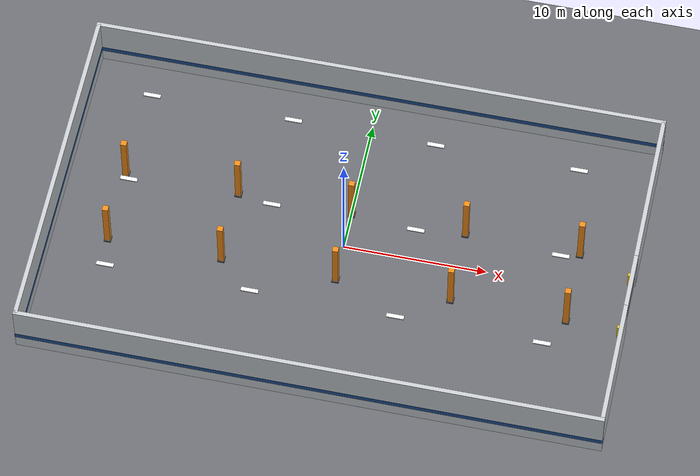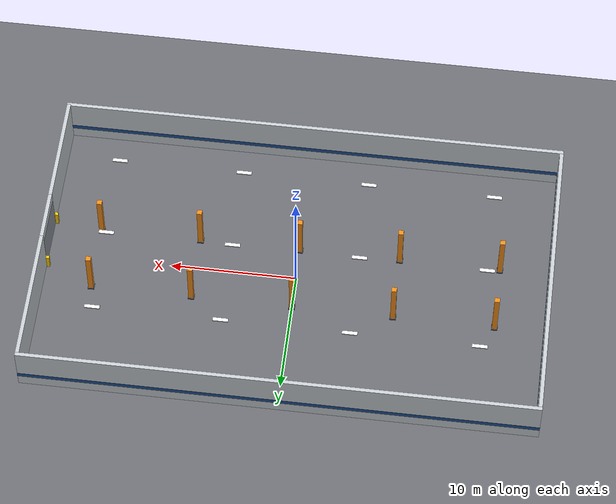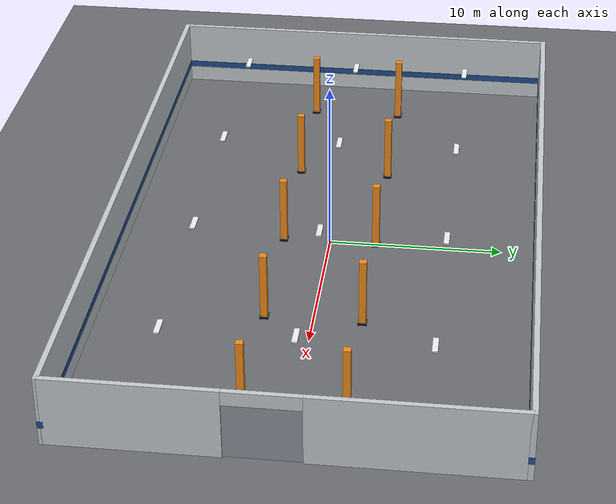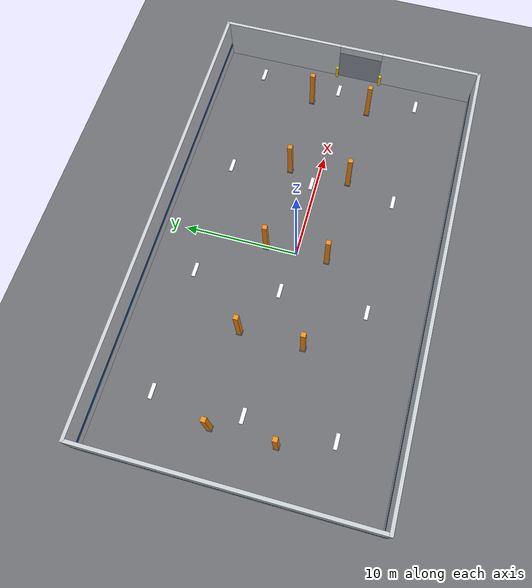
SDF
<sdf version="1.8">
 <world name="factory">
  <model name="ground">
   <static>true</static>
   <link name="l">
    <collision name="c">
     <geometry><plane><normal>0 0 1</normal><size>60 40</size></plane></geometry>
     <surface><friction><ode><mu>1.0</mu><mu2>1.0</mu2></ode></friction></surface>
    </collision>
    <visual name="v">
     <geometry><plane><normal>0 0 1</normal><size>60 40</size></plane></geometry>
     <material>
      <ambient>0.42 0.43 0.45 1</ambient>
      <diffuse>0.42 0.43 0.45 1</diffuse>
      <specular>0.3 0.3 0.3 1</specular>
      <pbr><metal><metalness>0.0</metalness><roughness>0.85</roughness></metal></pbr>
     </material>
    </visual>
   </link>
  </model>
  <model name="hall">
   <static>true</static>
   <link name="l0">
    <pose>0.000 12.000 2.000 0 0 0.000</pose>
    <collision name="c"><geometry><box><size>40.3 0.3 4.0</size></box></geometry></collision>
    <visual name="v">
     <geometry><box><size>40.3 0.3 4.0</size></box></geometry>
     <material>
      <ambient>0.78 0.8 0.82 1</ambient>
      <diffuse>0.78 0.8 0.82 1</diffuse>
      <specular>0.3 0.3 0.3 1</specular>
      <pbr><metal><metalness>0.0</metalness><roughness>0.7</roughness></metal></pbr>
     </material>
    </visual>
   </link>
   <link name="l1">
    <pose>0.000 12.000 1.200 0 0 0.000</pose>
    <visual name="v">
     <geometry><box><size>40.32 0.32 0.4</size></box></geometry>
     <material>
      <ambient>0.12 0.3 0.55 1</ambient>
      <diffuse>0.12 0.3 0.55 1</diffuse>
      <specular>0.3 0.3 0.3 1</specular>
      <pbr><metal><metalness>0.0</metalness><roughness>0.6</roughness></metal></pbr>
     </material>
     <cast_shadows>false</cast_shadows>
    </visual>
   </link>
   <link name="l2">
    <pose>0.000 -12.000 2.000 0 0 0.000</pose>
    <collision name="c"><geometry><box><size>40.3 0.3 4.0</size></box></geometry></collision>
    <visual name="v">
     <geometry><box><size>40.3 0.3 4.0</size></box></geometry>
     <material>
      <ambient>0.78 0.8 0.82 1</ambient>
      <diffuse>0.78 0.8 0.82 1</diffuse>
      <specular>0.3 0.3 0.3 1</specular>
      <pbr><metal><metalness>0.0</metalness><roughness>0.7</roughness></metal></pbr>
     </material>
    </visual>
   </link>
   <link name="l3">
    <pose>0.000 -12.000 1.200 0 0 0.000</pose>
    <visual name="v">
     <geometry><box><size>40.32 0.32 0.4</size></box></geometry>
     <material>
      <ambient>0.12 0.3 0.55 1</ambient>
      <diffuse>0.12 0.3 0.55 1</diffuse>
      <specular>0.3 0.3 0.3 1</specular>
      <pbr><metal><metalness>0.0</metalness><roughness>0.6</roughness></metal></pbr>
     </material>
     <cast_shadows>false</cast_shadows>
    </visual>
   </link>
   <link name="l4">
    <pose>-20.000 0.000 2.000 0 0 0.000</pose>
    <collision name="c"><geometry><box><size>0.3 24.0 4.0</size></box></geometry></collision>
    <visual name="v">
     <geometry><box><size>0.3 24.0 4.0</size></box></geometry>
     <material>
      <ambient>0.78 0.8 0.82 1</ambient>
      <diffuse>0.78 0.8 0.82 1</diffuse>
      <specular>0.3 0.3 0.3 1</specular>
      <pbr><metal><metalness>0.0</metalness><roughness>0.7</roughness></metal></pbr>
     </material>
    </visual>
   </link>
   <link name="l5">
    <pose>-20.000 0.000 1.200 0 0 0.000</pose>
    <visual name="v">
     <geometry><box><size>0.32 24.02 0.4</size></box></geometry>
     <material>
      <ambient>0.12 0.3 0.55 1</ambient>
      <diffuse>0.12 0.3 0.55 1</diffuse>
      <specular>0.3 0.3 0.3 1</specular>
      <pbr><metal><metalness>0.0</metalness><roughness>0.6</roughness></metal></pbr>
     </material>
     <cast_shadows>false</cast_shadows>
    </visual>
   </link>
   <link name="l6">
    <pose>20.000 -7.500 2.000 0 0 0.000</pose>
    <collision name="c"><geometry><box><size>0.3 9.0 4.0</size></box></geometry></collision>
    <visual name="v">
     <geometry><box><size>0.3 9.0 4.0</size></box></geometry>
     <material>
      <ambient>0.78 0.8 0.82 1</ambient>
      <diffuse>0.78 0.8 0.82 1</diffuse>
      <specular>0.3 0.3 0.3 1</specular>
      <pbr><metal><metalness>0.0</metalness><roughness>0.7</roughness></metal></pbr>
     </material>
    </visual>
   </link>
   <link name="l7">
    <pose>20.000 6.500 2.000 0 0 0.000</pose>
    <collision name="c"><geometry><box><size>0.3 11.0 4.0</size></box></geometry></collision>
    <visual name="v">
     <geometry><box><size>0.3 11.0 4.0</size></box></geometry>
     <material>
      <ambient>0.78 0.8 0.82 1</ambient>
      <diffuse>0.78 0.8 0.82 1</diffuse>
      <specular>0.3 0.3 0.3 1</specular>
      <pbr><metal><metalness>0.0</metalness><roughness>0.7</roughness></metal></pbr>
     </material>
    </visual>
   </link>
   <link name="l8">
    <pose>19.950 -1.000 1.600 0 0 0.000</pose>
    <collision name="c"><geometry><box><size>0.2 4.0 3.2</size></box></geometry></collision>
    <visual name="v">
     <geometry><box><size>0.2 4.0 3.2</size></box></geometry>
     <material>
      <ambient>0.55 0.58 0.62 1</ambient>
      <diffuse>0.55 0.58 0.62 1</diffuse>
      <specular>0.3 0.3 0.3 1</specular>
      <pbr><metal><metalness>0.8</metalness><roughness>0.4</roughness></metal></pbr>
     </material>
    </visual>
   </link>
   <link name="l9">
    <pose>20.000 -1.000 3.600 0 0 0.000</pose>
    <collision name="c"><geometry><box><size>0.3 4.0 0.7999999999999998</size></box></geometry></collision>
    <visual name="v">
     <geometry><box><size>0.3 4.0 0.7999999999999998</size></box></geometry>
     <material>
      <ambient>0.78 0.8 0.82 1</ambient>
      <diffuse>0.78 0.8 0.82 1</diffuse>
      <specular>0.3 0.3 0.3 1</specular>
      <pbr><metal><metalness>0.0</metalness><roughness>0.7</roughness></metal></pbr>
     </material>
    </visual>
   </link>
   <link name="l10">
    <pose>19.700 -3.100 0.600 0 0 0.000</pose>
    <collision name="c"><geometry><box><size>0.25 0.25 1.2</size></box></geometry></collision>
    <visual name="v">
     <geometry><box><size>0.25 0.25 1.2</size></box></geometry>
     <material>
      <ambient>0.98 0.8 0.05 1</ambient>
      <diffuse>0.98 0.8 0.05 1</diffuse>
      <specular>0.3 0.3 0.3 1</specular>
      <pbr><metal><metalness>0.0</metalness><roughness>0.5</roughness></metal></pbr>
     </material>
    </visual>
   </link>
   <link name="l11">
    <pose>19.700 1.100 0.600 0 0 0.000</pose>
    <collision name="c"><geometry><box><size>0.25 0.25 1.2</size></box></geometry></collision>
    <visual name="v">
     <geometry><box><size>0.25 0.25 1.2</size></box></geometry>
     <material>
      <ambient>0.98 0.8 0.05 1</ambient>
      <diffuse>0.98 0.8 0.05 1</diffuse>
      <specular>0.3 0.3 0.3 1</specular>
      <pbr><metal><metalness>0.0</metalness><roughness>0.5</roughness></metal></pbr>
     </material>
    </visual>
   </link>
   <link name="l12">
    <pose>-16.000 -2.700 2.000 0 0 0.000</pose>
    <collision name="c"><geometry><box><size>0.4 0.4 4.0</size></box></geometry></collision>
    <visual name="v">
     <geometry><box><size>0.4 0.4 4.0</size></box></geometry>
     <material>
      <ambient>0.95 0.55 0.1 1</ambient>
      <diffuse>0.95 0.55 0.1 1</diffuse>
      <specular>0.3 0.3 0.3 1</specular>
      <pbr><metal><metalness>0.3</metalness><roughness>0.5</roughness></metal></pbr>
     </material>
    </visual>
   </link>
   <link name="l13">
    <pose>-16.000 -2.700 0.075 0 0 0.000</pose>
    <collision name="c"><geometry><box><size>0.5 0.5 0.15</size></box></geometry></collision>
    <visual name="v">
     <geometry><box><size>0.5 0.5 0.15</size></box></geometry>
     <material>
      <ambient>0.05 0.05 0.05 1</ambient>
      <diffuse>0.05 0.05 0.05 1</diffuse>
      <specular>0.3 0.3 0.3 1</specular>
      <pbr><metal><metalness>0.0</metalness><roughness>0.6</roughness></metal></pbr>
     </material>
    </visual>
   </link>
   <link name="l14">
    <pose>-16.000 2.700 2.000 0 0 0.000</pose>
    <collision name="c"><geometry><box><size>0.4 0.4 4.0</size></box></geometry></collision>
    <visual name="v">
     <geometry><box><size>0.4 0.4 4.0</size></box></geometry>
     <material>
      <ambient>0.95 0.55 0.1 1</ambient>
      <diffuse>0.95 0.55 0.1 1</diffuse>
      <specular>0.3 0.3 0.3 1</specular>
      <pbr><metal><metalness>0.3</metalness><roughness>0.5</roughness></metal></pbr>
     </material>
    </visual>
   </link>
   <link name="l15">
    <pose>-16.000 2.700 0.075 0 0 0.000</pose>
    <collision name="c"><geometry><box><size>0.5 0.5 0.15</size></box></geometry></collision>
    <visual name="v">
     <geometry><box><size>0.5 0.5 0.15</size></box></geometry>
     <material>
      <ambient>0.05 0.05 0.05 1</ambient>
      <diffuse>0.05 0.05 0.05 1</diffuse>
      <specular>0.3 0.3 0.3 1</specular>
      <pbr><metal><metalness>0.0</metalness><roughness>0.6</roughness></metal></pbr>
     </material>
    </visual>
   </link>
   <link name="l16">
    <pose>-8.000 -2.700 2.000 0 0 0.000</pose>
    <collision name="c"><geometry><box><size>0.4 0.4 4.0</size></box></geometry></collision>
    <visual name="v">
     <geometry><box><size>0.4 0.4 4.0</size></box></geometry>
     <material>
      <ambient>0.95 0.55 0.1 1</ambient>
      <diffuse>0.95 0.55 0.1 1</diffuse>
      <specular>0.3 0.3 0.3 1</specular>
      <pbr><metal><metalness>0.3</metalness><roughness>0.5</roughness></metal></pbr>
     </material>
    </visual>
   </link>
   <link name="l17">
    <pose>-8.000 -2.700 0.075 0 0 0.000</pose>
    <collision name="c"><geometry><box><size>0.5 0.5 0.15</size></box></geometry></collision>
    <visual name="v">
     <geometry><box><size>0.5 0.5 0.15</size></box></geometry>
     <material>
      <ambient>0.05 0.05 0.05 1</ambient>
      <diffuse>0.05 0.05 0.05 1</diffuse>
      <specular>0.3 0.3 0.3 1</specular>
      <pbr><metal><metalness>0.0</metalness><roughness>0.6</roughness></metal></pbr>
     </material>
    </visual>
   </link>
   <link name="l18">
    <pose>-8.000 2.700 2.000 0 0 0.000</pose>
    <collision name="c"><geometry><box><size>0.4 0.4 4.0</size></box></geometry></collision>
    <visual name="v">
     <geometry><box><size>0.4 0.4 4.0</size></box></geometry>
     <material>
      <ambient>0.95 0.55 0.1 1</ambient>
      <diffuse>0.95 0.55 0.1 1</diffuse>
      <specular>0.3 0.3 0.3 1</specular>
      <pbr><metal><metalness>0.3</metalness><roughness>0.5</roughness></metal></pbr>
     </material>
    </visual>
   </link>
   <link name="l19">
    <pose>-8.000 2.700 0.075 0 0 0.000</pose>
    <collision name="c"><geometry><box><size>0.5 0.5 0.15</size></box></geometry></collision>
    <visual name="v">
     <geometry><box><size>0.5 0.5 0.15</size></box></geometry>
     <material>
      <ambient>0.05 0.05 0.05 1</ambient>
      <diffuse>0.05 0.05 0.05 1</diffuse>
      <specular>0.3 0.3 0.3 1</specular>
      <pbr><metal><metalness>0.0</metalness><roughness>0.6</roughness></metal></pbr>
     </material>
    </visual>
   </link>
   <link name="l20">
    <pose>0.000 -2.700 2.000 0 0 0.000</pose>
    <collision name="c"><geometry><box><size>0.4 0.4 4.0</size></box></geometry></collision>
    <visual name="v">
     <geometry><box><size>0.4 0.4 4.0</size></box></geometry>
     <material>
      <ambient>0.95 0.55 0.1 1</ambient>
      <diffuse>0.95 0.55 0.1 1</diffuse>
      <specular>0.3 0.3 0.3 1</specular>
      <pbr><metal><metalness>0.3</metalness><roughness>0.5</roughness></metal></pbr>
     </material>
    </visual>
   </link>
   <link name="l21">
    <pose>0.000 -2.700 0.075 0 0 0.000</pose>
    <collision name="c"><geometry><box><size>0.5 0.5 0.15</size></box></geometry></collision>
    <visual name="v">
     <geometry><box><size>0.5 0.5 0.15</size></box></geometry>
     <material>
      <ambient>0.05 0.05 0.05 1</ambient>
      <diffuse>0.05 0.05 0.05 1</diffuse>
      <specular>0.3 0.3 0.3 1</specular>
      <pbr><metal><metalness>0.0</metalness><roughness>0.6</roughness></metal></pbr>
     </material>
    </visual>
   </link>
   <link name="l22">
    <pose>0.000 2.700 2.000 0 0 0.000</pose>
    <collision name="c"><geometry><box><size>0.4 0.4 4.0</size></box></geometry></collision>
    <visual name="v">
     <geometry><box><size>0.4 0.4 4.0</size></box></geometry>
     <material>
      <ambient>0.95 0.55 0.1 1</ambient>
      <diffuse>0.95 0.55 0.1 1</diffuse>
      <specular>0.3 0.3 0.3 1</specular>
      <pbr><metal><metalness>0.3</metalness><roughness>0.5</roughness></metal></pbr>
     </material>
    </visual>
   </link>
   <link name="l23">
    <pose>0.000 2.700 0.075 0 0 0.000</pose>
    <collision name="c"><geometry><box><size>0.5 0.5 0.15</size></box></geometry></collision>
    <visual name="v">
     <geometry><box><size>0.5 0.5 0.15</size></box></geometry>
     <material>
      <ambient>0.05 0.05 0.05 1</ambient>
      <diffuse>0.05 0.05 0.05 1</diffuse>
      <specular>0.3 0.3 0.3 1</specular>
      <pbr><metal><metalness>0.0</metalness><roughness>0.6</roughness></metal></pbr>
     </material>
    </visual>
   </link>
   <link name="l24">
    <pose>8.000 -2.700 2.000 0 0 0.000</pose>
    <collision name="c"><geometry><box><size>0.4 0.4 4.0</size></box></geometry></collision>
    <visual name="v">
     <geometry><box><size>0.4 0.4 4.0</size></box></geometry>
     <material>
      <ambient>0.95 0.55 0.1 1</ambient>
      <diffuse>0.95 0.55 0.1 1</diffuse>
      <specular>0.3 0.3 0.3 1</specular>
      <pbr><metal><metalness>0.3</metalness><roughness>0.5</roughness></metal></pbr>
     </material>
    </visual>
   </link>
   <link name="l25">
    <pose>8.000 -2.700 0.075 0 0 0.000</pose>
    <collision name="c"><geometry><box><size>0.5 0.5 0.15</size></box></geometry></collision>
    <visual name="v">
     <geometry><box><size>0.5 0.5 0.15</size></box></geometry>
     <material>
      <ambient>0.05 0.05 0.05 1</ambient>
      <diffuse>0.05 0.05 0.05 1</diffuse>
      <specular>0.3 0.3 0.3 1</specular>
      <pbr><metal><metalness>0.0</metalness><roughness>0.6</roughness></metal></pbr>
     </material>
    </visual>
   </link>
   <link name="l26">
    <pose>8.000 2.700 2.000 0 0 0.000</pose>
    <collision name="c"><geometry><box><size>0.4 0.4 4.0</size></box></geometry></collision>
    <visual name="v">
     <geometry><box><size>0.4 0.4 4.0</size></box></geometry>
     <material>
      <ambient>0.95 0.55 0.1 1</ambient>
      <diffuse>0.95 0.55 0.1 1</diffuse>
      <specular>0.3 0.3 0.3 1</specular>
      <pbr><metal><metalness>0.3</metalness><roughness>0.5</roughness></metal></pbr>
     </material>
    </visual>
   </link>
   <link name="l27">
    <pose>8.000 2.700 0.075 0 0 0.000</pose>
    <collision name="c"><geometry><box><size>0.5 0.5 0.15</size></box></geometry></collision>
    <visual name="v">
     <geometry><box><size>0.5 0.5 0.15</size></box></geometry>
     <material>
      <ambient>0.05 0.05 0.05 1</ambient>
      <diffuse>0.05 0.05 0.05 1</diffuse>
      <specular>0.3 0.3 0.3 1</specular>
      <pbr><metal><metalness>0.0</metalness><roughness>0.6</roughness></metal></pbr>
     </material>
    </visual>
   </link>
   <link name="l28">
    <pose>16.000 -2.700 2.000 0 0 0.000</pose>
    <collision name="c"><geometry><box><size>0.4 0.4 4.0</size></box></geometry></collision>
    <visual name="v">
     <geometry><box><size>0.4 0.4 4.0</size></box></geometry>
     <material>
      <ambient>0.95 0.55 0.1 1</ambient>
      <diffuse>0.95 0.55 0.1 1</diffuse>
      <specular>0.3 0.3 0.3 1</specular>
      <pbr><metal><metalness>0.3</metalness><roughness>0.5</roughness></metal></pbr>
     </material>
    </visual>
   </link>
   <link name="l29">
    <pose>16.000 -2.700 0.075 0 0 0.000</pose>
    <collision name="c"><geometry><box><size>0.5 0.5 0.15</size></box></geometry></collision>
    <visual name="v">
     <geometry><box><size>0.5 0.5 0.15</size></box></geometry>
     <material>
      <ambient>0.05 0.05 0.05 1</ambient>
      <diffuse>0.05 0.05 0.05 1</diffuse>
      <specular>0.3 0.3 0.3 1</specular>
      <pbr><metal><metalness>0.0</metalness><roughness>0.6</roughness></metal></pbr>
     </material>
    </visual>
   </link>
   <link name="l30">
    <pose>16.000 2.700 2.000 0 0 0.000</pose>
    <collision name="c"><geometry><box><size>0.4 0.4 4.0</size></box></geometry></collision>
    <visual name="v">
     <geometry><box><size>0.4 0.4 4.0</size></box></geometry>
     <material>
      <ambient>0.95 0.55 0.1 1</ambient>
      <diffuse>0.95 0.55 0.1 1</diffuse>
      <specular>0.3 0.3 0.3 1</specular>
      <pbr><metal><metalness>0.3</metalness><roughness>0.5</roughness></metal></pbr>
     </material>
    </visual>
   </link>
   <link name="l31">
    <pose>16.000 2.700 0.075 0 0 0.000</pose>
    <collision name="c"><geometry><box><size>0.5 0.5 0.15</size></box></geometry></collision>
    <visual name="v">
     <geometry><box><size>0.5 0.5 0.15</size></box></geometry>
     <material>
      <ambient>0.05 0.05 0.05 1</ambient>
      <diffuse>0.05 0.05 0.05 1</diffuse>
      <specular>0.3 0.3 0.3 1</specular>
      <pbr><metal><metalness>0.0</metalness><roughness>0.6</roughness></metal></pbr>
     </material>
    </visual>
   </link>
   <link name="l32">
    <pose>-15.000 -7.000 3.890 0 0 0.000</pose>
    <visual name="v">
     <geometry><box><size>1.2 0.3 0.08</size></box></geometry>
     <material>
      <ambient>0.95 0.95 0.95 1</ambient>
      <diffuse>0.95 0.95 0.95 1</diffuse>
      <specular>0.3 0.3 0.3 1</specular>
      <pbr><metal><metalness>0.0</metalness><roughness>0.6</roughness></metal></pbr>
     </material>
     <cast_shadows>false</cast_shadows>
    </visual>
   </link>
   <link name="l33">
    <pose>-15.000 0.000 3.890 0 0 0.000</pose>
    <visual name="v">
     <geometry><box><size>1.2 0.3 0.08</size></box></geometry>
     <material>
      <ambient>0.95 0.95 0.95 1</ambient>
      <diffuse>0.95 0.95 0.95 1</diffuse>
      <specular>0.3 0.3 0.3 1</specular>
      <pbr><metal><metalness>0.0</metalness><roughness>0.6</roughness></metal></pbr>
     </material>
     <cast_shadows>false</cast_shadows>
    </visual>
   </link>
   <link name="l34">
    <pose>-15.000 7.000 3.890 0 0 0.000</pose>
    <visual name="v">
     <geometry><box><size>1.2 0.3 0.08</size></box></geometry>
     <material>
      <ambient>0.95 0.95 0.95 1</ambient>
      <diffuse>0.95 0.95 0.95 1</diffuse>
      <specular>0.3 0.3 0.3 1</specular>
      <pbr><metal><metalness>0.0</metalness><roughness>0.6</roughness></metal></pbr>
     </material>
     <cast_shadows>false</cast_shadows>
    </visual>
   </link>
   <link name="l35">
    <pose>-5.000 -7.000 3.890 0 0 0.000</pose>
    <visual name="v">
     <geometry><box><size>1.2 0.3 0.08</size></box></geometry>
     <material>
      <ambient>0.95 0.95 0.95 1</ambient>
      <diffuse>0.95 0.95 0.95 1</diffuse>
      <specular>0.3 0.3 0.3 1</specular>
      <pbr><metal><metalness>0.0</metalness><roughness>0.6</roughness></metal></pbr>
     </material>
     <cast_shadows>false</cast_shadows>
    </visual>
   </link>
   <link name="l36">
    <pose>-5.000 0.000 3.890 0 0 0.000</pose>
    <visual name="v">
     <geometry><box><size>1.2 0.3 0.08</size></box></geometry>
     <material>
      <ambient>0.95 0.95 0.95 1</ambient>
      <diffuse>0.95 0.95 0.95 1</diffuse>
      <specular>0.3 0.3 0.3 1</specular>
      <pbr><metal><metalness>0.0</metalness><roughness>0.6</roughness></metal></pbr>
     </material>
     <cast_shadows>false</cast_shadows>
    </visual>
   </link>
   <link name="l37">
    <pose>-5.000 7.000 3.890 0 0 0.000</pose>
    <visual name="v">
     <geometry><box><size>1.2 0.3 0.08</size></box></geometry>
     <material>
      <ambient>0.95 0.95 0.95 1</ambient>
      <diffuse>0.95 0.95 0.95 1</diffuse>
      <specular>0.3 0.3 0.3 1</specular>
      <pbr><metal><metalness>0.0</metalness><roughness>0.6</roughness></metal></pbr>
     </material>
     <cast_shadows>false</cast_shadows>
    </visual>
   </link>
   <link name="l38">
    <pose>5.000 -7.000 3.890 0 0 0.000</pose>
    <visual name="v">
     <geometry><box><size>1.2 0.3 0.08</size></box></geometry>
     <material>
      <ambient>0.95 0.95 0.95 1</ambient>
      <diffuse>0.95 0.95 0.95 1</diffuse>
      <specular>0.3 0.3 0.3 1</specular>
      <pbr><metal><metalness>0.0</metalness><roughness>0.6</roughness></metal></pbr>
     </material>
     <cast_shadows>false</cast_shadows>
    </visual>
   </link>
   <link name="l39">
    <pose>5.000 0.000 3.890 0 0 0.000</pose>
    <visual name="v">
     <geometry><box><size>1.2 0.3 0.08</size></box></geometry>
     <material>
      <ambient>0.95 0.95 0.95 1</ambient>
      <diffuse>0.95 0.95 0.95 1</diffuse>
      <specular>0.3 0.3 0.3 1</specular>
      <pbr><metal><metalness>0.0</metalness><roughness>0.6</roughness></metal></pbr>
     </material>
     <cast_shadows>false</cast_shadows>
    </visual>
   </link>
   <link name="l40">
    <pose>5.000 7.000 3.890 0 0 0.000</pose>
    <visual name="v">
     <geometry><box><size>1.2 0.3 0.08</size></box></geometry>
     <material>
      <ambient>0.95 0.95 0.95 1</ambient>
      <diffuse>0.95 0.95 0.95 1</diffuse>
      <specular>0.3 0.3 0.3 1</specular>
      <pbr><metal><metalness>0.0</metalness><roughness>0.6</roughness></metal></pbr>
     </material>
     <cast_shadows>false</cast_shadows>
    </visual>
   </link>
   <link name="l41">
    <pose>15.000 -7.000 3.890 0 0 0.000</pose>
    <visual name="v">
     <geometry><box><size>1.2 0.3 0.08</size></box></geometry>
     <material>
      <ambient>0.95 0.95 0.95 1</ambient>
      <diffuse>0.95 0.95 0.95 1</diffuse>
      <specular>0.3 0.3 0.3 1</specular>
      <pbr><metal><metalness>0.0</metalness><roughness>0.6</roughness></metal></pbr>
     </material>
     <cast_shadows>false</cast_shadows>
    </visual>
   </link>
   <link name="l42">
    <pose>15.000 0.000 3.890 0 0 0.000</pose>
    <visual name="v">
     <geometry><box><size>1.2 0.3 0.08</size></box></geometry>
     <material>
      <ambient>0.95 0.95 0.95 1</ambient>
      <diffuse>0.95 0.95 0.95 1</diffuse>
      <specular>0.3 0.3 0.3 1</specular>
      <pbr><metal><metalness>0.0</metalness><roughness>0.6</roughness></metal></pbr>
     </material>
     <cast_shadows>false</cast_shadows>
    </visual>
   </link>
   <link name="l43">
    <pose>15.000 7.000 3.890 0 0 0.000</pose>
    <visual name="v">
     <geometry><box><size>1.2 0.3 0.08</size></box></geometry>
     <material>
      <ambient>0.95 0.95 0.95 1</ambient>
      <diffuse>0.95 0.95 0.95 1</diffuse>
      <specular>0.3 0.3 0.3 1</specular>
      <pbr><metal><metalness>0.0</metalness><roughness>0.6</roughness></metal></pbr>
     </material>
     <cast_shadows>false</cast_shadows>
    </visual>
   </link>
  </model>
 </world>
</sdf>
